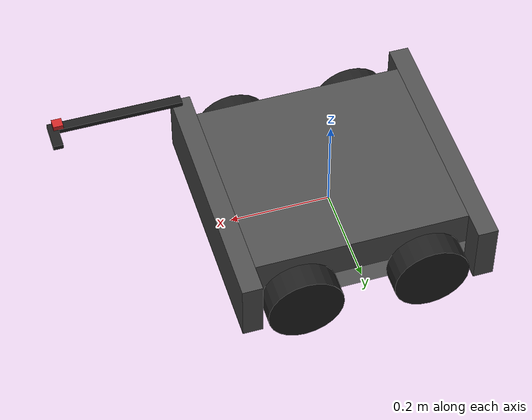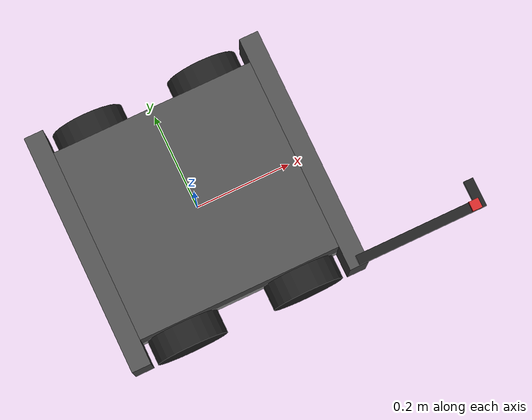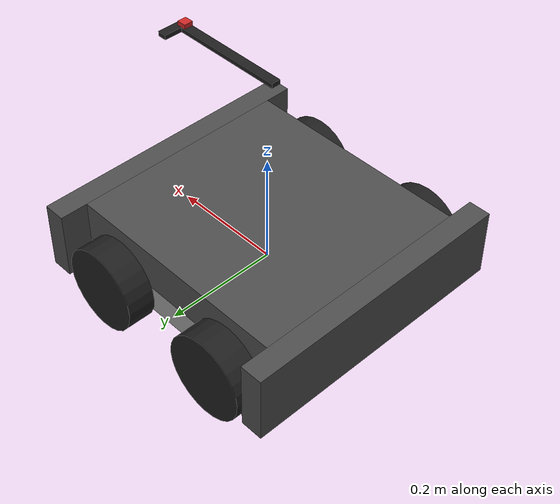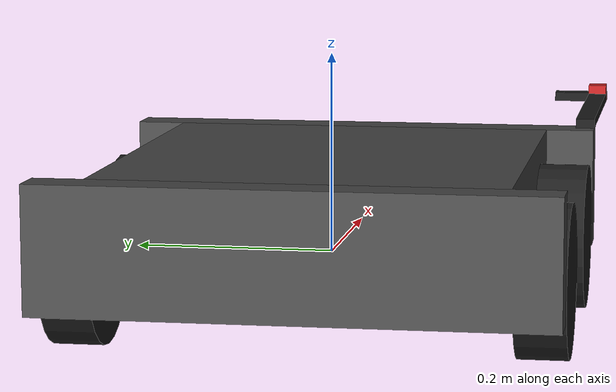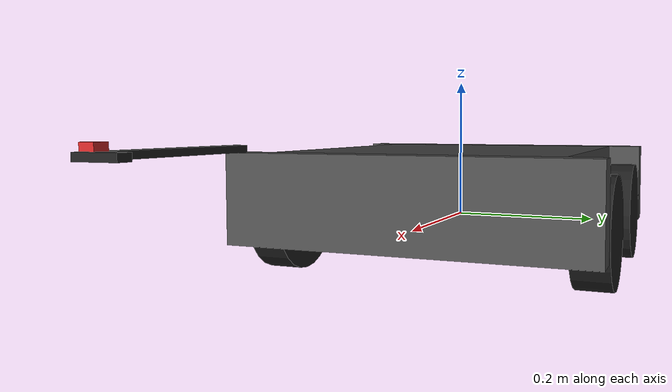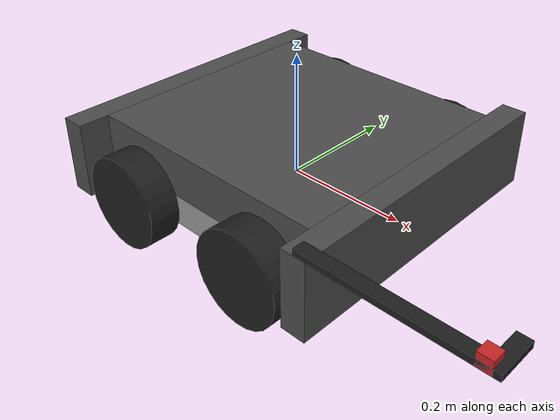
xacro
<?xml version="1.0"?>

<robot name="mobile_robot" xmlns:xacro="https://www.ros.org/wiki/xacro" >
    <xacro:include filename="$(find dor_description)/urdf/fourwheeler_base.urdf.xacro" />
    <xacro:fourwheeler_base_macro/>
    <!--mobile base 50 cm x 50 cm square-->
    <xacro:include filename="$(find dor_description)/urdf/camera.urdf.xacro"/>
    <xacro:camera_macro parent="link_tip">
      <xacro:property name="location_x" value="0.02" />
      <xacro:property name="location_y" value="0.0" />
      <xacro:property name="location_z" value="0.02" />
      <xacro:property name="location_r" value="0" />
      <xacro:property name="location_p" value="-1.57" />
      <xacro:property name="location_y" value="0" />
      <xacro:property name="camera_width" value="600" />
      <xacro:property name="camera_height" value="600" />
      <xacro:property name="camera_name" value="cam_up"/>
    </xacro:camera_macro>
</robot>

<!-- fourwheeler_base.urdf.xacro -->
<robot xmlns:xacro="https://www.ros.org/wiki/xacro" >
    <xacro:property name="PI" value="3.1415926535897931"/>
    <xacro:property name="chassis_x" value="0.42" />
    <xacro:property name="chassis_y" value="0.4" />
    <xacro:property name="chassis_z" value="0.05" />
    <xacro:property name="chassis_m" value="28" />

    <xacro:property name="wheel_r" value="0.075"/>
    <xacro:property name="wheel_l" value="0.05"/>
    <xacro:property name="wheel_m" value="0.5"/>

    <xacro:property name="wheelbase" value="0.25" /> <!--base on the wheel diameter and chassis_x-->
    <xacro:property name="track" value="0.45" /> <!--base on the wheel width and chassis_y-->
    <xacro:property name="base_x" value="0.42" />
    <xacro:property name="base_y" value="0.4" />
    <xacro:property name="base_z" value="0.075" />
    <xacro:property name="base_m" value="2" />

    <xacro:property name="bumper_x" value="0.04" />
    <xacro:property name="bumper_y" value="0.5" />
    <xacro:property name="bumper_z" value="0.125" />
    <xacro:property name="bumper_m" value="1" />

    <xacro:property name="hook_x" value="0.25" />
    <xacro:property name="hook_y" value="0.02" />
    <xacro:property name="hook_z" value="0.01" />
    <xacro:property name="hook_m" value="0.01" />

    <xacro:property name="tip_x" value="0.02" />
    <xacro:property name="tip_y" value="0.06" />
    <xacro:property name="tip_z" value="0.01" />
    <xacro:property name="tip_m" value="0.01" />

    <!-- main triwheeler link -->
    <xacro:macro name="fourwheeler_base_macro">
      <!-- Used for fixing robot to Gazebo 'base_link'-->
      <link name="world"/>
      <joint name="joint_world_chassis" type="floating">
        <parent link="world"/>
        <child link="link_chassis"/>
      </joint>

      <link name="link_chassis">
        <visual>
          <origin xyz="0 0 0" rpy="0 0 0" />
          <geometry>
            <box size="${chassis_x} ${chassis_y} ${chassis_z}"/>
          </geometry>
        </visual>
        <collision>
          <origin xyz="0 0 0" rpy="0 0 0" />
          <geometry>
            <box size="${chassis_x} ${chassis_y} ${chassis_z}"/>
          </geometry>
        </collision>
        <inertial>
          <mass value="${chassis_m}"/>
          <origin rpy="0 0 0" xyz="0 0 0"/>
          <inertia ixx="${1/12*chassis_m*(chassis_y*chassis_y+chassis_z*chassis_z)}" ixy="0" ixz="0" iyy="${1/12*chassis_m*(chassis_z*chassis_z+chassis_x*chassis_x)}" iyz="0" izz="${1/12*chassis_m*(chassis_x*chassis_x+chassis_y*chassis_y)}"/>
        </inertial>
      </link>

      <!--left rear wheel-->
      <joint name="joint_chassis_lrwheel" type="continuous">
        <origin xyz="-${wheelbase/2} ${track/2} 0" rpy="0 0 0" />
        <parent link="link_chassis"/>
        <child link="link_lrwheel"/>
        <axis xyz="0 1 0" rpy="0 0 0" />
      </joint>
      <link name="link_lrwheel">
        <visual>
          <origin rpy="${PI/2} 0 0" xyz="0 0 0"/>
          <geometry>
            <cylinder length="${wheel_l}" radius="${wheel_r}"/>
          </geometry>
        </visual>
        <collision>
          <origin rpy="${PI/2} 0 0" xyz="0 0 0" />
          <geometry>
            <cylinder length="${wheel_l}" radius="${wheel_r}"/>
          </geometry>
        </collision>
        <inertial>
          <mass value="${wheel_m}"/>
          <origin rpy="${PI/2} 0 0" xyz="0 0 0"/>
          <inertia ixx="${1/12*wheel_m*(3*wheel_r*wheel_r+wheel_l*wheel_l)}" ixy="0" ixz="0" iyy="${1/12*wheel_m*(3*wheel_r*wheel_r+wheel_l*wheel_l)}" iyz="0" izz="${1/2*wheel_m*wheel_r*wheel_r}"/>
        </inertial>
      </link>

      <!--right rear wheel-->
      <joint name="joint_chassis_rrwheel" type="continuous">
        <origin xyz="-${wheelbase/2} -${track/2} 0" rpy="0 0 0" />
        <parent link="link_chassis"/>
        <child link="link_rrwheel"/>
        <axis xyz="0 1 0" rpy="0 0 0" />
      </joint>
      <link name="link_rrwheel">
        <visual>
          <origin rpy="${PI/2} 0 0" xyz="0 0 0"/>
          <geometry>
            <cylinder length="${wheel_l}" radius="${wheel_r}"/>
          </geometry>
        </visual>
        <collision>
          <origin rpy="${PI/2} 0 0" xyz="0 0 0" />
          <geometry>
            <cylinder length="${wheel_l}" radius="${wheel_r}"/>
          </geometry>
        </collision>
        <inertial>
          <mass value="${wheel_m}"/>
          <origin rpy="${PI/2} 0 0" xyz="0 0 0"/>
          <inertia ixx="${1/12*wheel_m*(3*wheel_r*wheel_r+wheel_l*wheel_l)}" ixy="0" ixz="0" iyy="${1/12*wheel_m*(3*wheel_r*wheel_r+wheel_l*wheel_l)}" iyz="0" izz="${1/2*wheel_m*wheel_r*wheel_r}"/>
        </inertial>
      </link>

      <!--left front wheel-->
      <joint name="joint_chassis_lfwheel" type="continuous">
        <origin xyz="${wheelbase/2} ${track/2} 0" rpy="0 0 0" />
        <parent link="link_chassis"/>
        <child link="link_lfwheel"/>
        <axis xyz="0 1 0" rpy="0 0 0" />
      </joint>
      <link name="link_lfwheel">
        <visual>
          <origin rpy="${PI/2} 0 0" xyz="0 0 0"/>
          <geometry>
            <cylinder length="${wheel_l}" radius="${wheel_r}"/>
          </geometry>
        </visual>
        <collision>
          <origin rpy="${PI/2} 0 0" xyz="0 0 0" />
          <geometry>
            <cylinder length="${wheel_l}" radius="${wheel_r}"/>
          </geometry>
        </collision>
        <inertial>
          <mass value="${wheel_m}"/>
          <origin rpy="${PI/2} 0 0" xyz="0 0 0"/>
          <inertia ixx="${1/12*wheel_m*(3*wheel_r*wheel_r+wheel_l*wheel_l)}" ixy="0" ixz="0" iyy="${1/12*wheel_m*(3*wheel_r*wheel_r+wheel_l*wheel_l)}" iyz="0" izz="${1/2*wheel_m*wheel_r*wheel_r}"/>
        </inertial>
      </link>

      <!--right front wheel-->
      <joint name="joint_chassis_rfwheel" type="continuous">
        <origin xyz="${wheelbase/2} -${track/2} 0" rpy="0 0 0" />
        <parent link="link_chassis"/>
        <child link="link_rfwheel"/>
        <axis xyz="0 1 0" rpy="0 0 0" />
      </joint>
      <link name="link_rfwheel">
        <visual>
          <origin rpy="${PI/2} 0 0" xyz="0 0 0"/>
          <geometry>
            <cylinder length="${wheel_l}" radius="${wheel_r}"/>
          </geometry>
        </visual>
        <collision>
          <origin rpy="${PI/2} 0 0" xyz="0 0 0" />
          <geometry>
            <cylinder length="${wheel_l}" radius="${wheel_r}"/>
          </geometry>
        </collision>
        <inertial>
          <mass value="${wheel_m}"/>
          <origin rpy="${PI/2} 0 0" xyz="0 0 0"/>
          <inertia ixx="${1/12*wheel_m*(3*wheel_r*wheel_r+wheel_l*wheel_l)}" ixy="0" ixz="0" iyy="${1/12*wheel_m*(3*wheel_r*wheel_r+wheel_l*wheel_l)}" iyz="0" izz="${1/2*wheel_m*wheel_r*wheel_r}"/>
        </inertial>
      </link>

      <!--upper base-->
      <joint name="joint_chassis_base" type="fixed">
        <origin xyz="0 0 ${chassis_z/2}" rpy="0 0 0"/>
        <parent link="link_chassis"/>
        <child link="link_base"/>
      </joint>

      <link name="link_base">
        <visual>
          <origin xyz="0 0 ${base_z/2}" rpy="0 0 0" />
          <geometry>
            <box size="${base_x} ${base_y} ${base_z}"/>
          </geometry>
        </visual>
        <collision>
          <origin xyz="0 0 ${base_z/2}" rpy="0 0 0" />
          <geometry>
            <box size="${base_x} ${base_y} ${base_z}"/>
          </geometry>
        </collision>
        <inertial>
          <mass value="${base_m}"/>
          <origin rpy="0 0 0" xyz="0 0 0"/>
          <inertia ixx="${1/12*base_m*(base_y*base_y+base_z*base_z)}" ixy="0" ixz="0" iyy="${1/12*base_m*(base_z*base_z+base_x*base_x)}" iyz="0" izz="${1/12*base_m*(base_x*base_x+base_y*base_y)}"/>
        </inertial>
      </link>

      <!--bumper-->
      <joint name="joint_chassis_fbumper" type="fixed">
        <origin xyz="${chassis_x/2} 0 ${(chassis_z+base_z)/2-chassis_z/2}" rpy="0 0 0"/>
        <parent link="link_chassis"/>
        <child link="link_fbumper"/>
      </joint>

      <link name="link_fbumper">
        <visual>
          <origin xyz="${bumper_x/2} 0 0" rpy="0 0 0" />
          <geometry>
            <box size="${bumper_x} ${bumper_y} ${bumper_z}"/>
          </geometry>
        </visual>
        <collision>
          <origin xyz="${bumper_x/2} 0 0" rpy="0 0 0" />
          <geometry>
            <box size="${bumper_x} ${bumper_y} ${bumper_z}"/>
          </geometry>
        </collision>
        <inertial>
          <mass value="${bumper_m}"/>
          <origin rpy="0 0 0" xyz="0 0 0"/>
          <inertia ixx="${1/12*bumper_m*(bumper_y*bumper_y+bumper_z*bumper_z)}" ixy="0" ixz="0" iyy="${1/12*bumper_m*(bumper_z*bumper_z+bumper_x*bumper_x)}" iyz="0" izz="${1/12*bumper_m*(bumper_x*bumper_x+bumper_y*bumper_y)}"/>
        </inertial>
      </link>

      <joint name="joint_chassis_rbumper" type="fixed">
        <origin xyz="-${chassis_x/2} 0 ${(chassis_z+base_z)/2-chassis_z/2}" rpy="0 0 0"/>
        <parent link="link_chassis"/>
        <child link="link_rbumper"/>
      </joint>

      <link name="link_rbumper">
        <visual>
          <origin xyz="-${bumper_x/2} 0 0" rpy="0 0 0" />
          <geometry>
            <box size="${bumper_x} ${bumper_y} ${bumper_z}"/>
          </geometry>
        </visual>
        <collision>
          <origin xyz="-${bumper_x/2} 0 0" rpy="0 0 0" />
          <geometry>
            <box size="${bumper_x} ${bumper_y} ${bumper_z}"/>
          </geometry>
        </collision>
        <inertial>
          <mass value="${bumper_m}"/>
          <origin rpy="0 0 0" xyz="0 0 0"/>
          <inertia ixx="${1/12*bumper_m*(bumper_y*bumper_y+bumper_z*bumper_z)}" ixy="0" ixz="0" iyy="${1/12*bumper_m*(bumper_z*bumper_z+bumper_x*bumper_x)}" iyz="0" izz="${1/12*bumper_m*(bumper_x*bumper_x+bumper_y*bumper_y)}"/>
        </inertial>
      </link>

      <!--hook for opening door-->
      <joint name="joint_fbummer_hook" type="revolute">
        <axis xyz="1 0 0" rpy="0 0 0"/>
        <limit velocity="0" effort="1000" lower="0" upper="0"/>
        <origin xyz="${bumper_x/2} -${bumper_y/2} ${bumper_z/2}" rpy="0 0 0"/>
        <parent link="link_fbumper"/>
        <child link="link_hook"/>
      </joint>
      <link name="link_hook">
        <visual>
          <origin xyz="${hook_x/2} ${hook_y/2} ${hook_z/2}" rpy="0 0 0" />
          <geometry>
            <box size="${hook_x} ${hook_y} ${hook_z}"/>
          </geometry>
        </visual>
        <collision>
          <origin xyz="${hook_x/2} ${hook_y/2} ${hook_z/2}" rpy="0 0 0" />
          <geometry>
            <box size="${hook_x} ${hook_y} ${hook_z}"/>
          </geometry>
        </collision>
        <inertial>
          <mass value="${hook_m}"/>
          <origin rpy="0 0 0" xyz="0 0 0"/>
          <inertia ixx="${1/12*hook_m*(hook_y*hook_y+hook_z*hook_z)}" ixy="0" ixz="0" iyy="${1/12*hook_m*(hook_z*hook_z+hook_x*hook_x)}" iyz="0" izz="${1/12*hook_m*(hook_x*hook_x+hook_y*hook_y)}"/>
        </inertial>
      </link>
      <joint name="joint_hook_tip" type="fixed">
        <origin xyz="${hook_x} ${hook_y/2} 0" rpy="0 0 0"/>
        <parent link="link_hook"/>
        <child link="link_tip"/>
      </joint>
      <link name="link_tip">
        <visual>
          <origin xyz="${tip_x/2} 0.02 ${tip_z/2}" rpy="0 0 0" />
          <geometry>
            <box size="${tip_x} ${tip_y} ${tip_z}"/>
          </geometry>
        </visual>
        <collision>
          <origin xyz="${tip_x/2} 0.02 ${tip_z/2}" rpy="0 0 0" />
          <geometry>
            <box size="${tip_x} ${tip_y} ${tip_z}"/>
          </geometry>
        </collision>
        <inertial>
          <mass value="${tip_m}"/>
          <origin rpy="0 0 0" xyz="0 0 0"/>
          <inertia ixx="${1/12*tip_m*(tip_y*tip_y+tip_z*tip_z)}" ixy="0" ixz="0" iyy="${1/12*tip_m*(tip_z*tip_z+tip_x*tip_x)}" iyz="0" izz="${1/12*tip_m*(tip_x*tip_x+tip_y*tip_y)}"/>
        </inertial>
      </link>

      <!--Gazebo-->
      <!-- skid steering controller -->
      <gazebo>
        <plugin name="skid_steer_drive_controller" filename="libgazebo_ros_skid_steer_drive.so">
          <updateRate>100.0</updateRate>
          <robotNamespace>/</robotNamespace>
          <leftFrontJoint>joint_chassis_lfwheel</leftFrontJoint>
          <rightFrontJoint>joint_chassis_rfwheel</rightFrontJoint>
          <leftRearJoint>joint_chassis_lrwheel</leftRearJoint>
          <rightRearJoint>joint_chassis_rrwheel</rightRearJoint>
          <wheelSeparation>${wheelbase}</wheelSeparation>
          <wheelDiameter>2*${wheel_r}</wheelDiameter>
          <robotBaseFrame>link_chassis</robotBaseFrame>
          <odometryFrame>odom</odometryFrame>
          <torque>30</torque>
          <topicName>cmd_vel</topicName>
          <odometryTopic>odom</odometryTopic>
          <broadcastTF>true</broadcastTF>
          <commandTopic>cmd_vel</commandTopic>
          <covariance_x>0.0001</covariance_x>
          <covariance_y>0.0000</covariance_y>
          <covariance_yaw>0.01</covariance_yaw>
        </plugin>
      </gazebo>

      <gazebo reference="link_chassis">
        <material>Gazebo/Grey</material>
      </gazebo>

      <gazebo reference="link_base">
        <material>Gazebo/DarkGrey</material>
      </gazebo>

      <gazebo reference="link_fbumper">
        <material>Gazebo/DarkGrey</material>
      </gazebo>

      <gazebo reference="link_rbumper">
        <material>Gazebo/DarkGrey</material>
      </gazebo>

      <gazebo reference="link_lrwheel">
        <mu1>0.1</mu1>
        <mu2>0.1</mu2>
        <material>Gazebo/Black</material>
      </gazebo>

      <gazebo reference="link_rrwheel">
        <mu1>0.1</mu1>
        <mu2>0.1</mu2>
        <material>Gazebo/Black</material>
      </gazebo>

      <gazebo reference="link_lfwheel">
        <mu1>0.1</mu1>
        <mu2>0.1</mu2>
        <material>Gazebo/Black</material>
      </gazebo>

      <gazebo reference="link_rfwheel">
        <mu1>0.1</mu1>
        <mu2>0.1</mu2>
        <material>Gazebo/Black</material>
      </gazebo>

      <gazebo reference="link_hook">
        <material>Gazebo/Black</material>
      </gazebo>
      <gazebo reference="link_tip">
        <material>Gazebo/Black</material>
      </gazebo>

      <!--ft force sensor in joint-->
      <gazebo reference ="joint_fbummer_hook">
        <provideFeedback>true</provideFeedback>
      </gazebo>

      <gazebo>
        <plugin name="ft_sensor" filename="libgazebo_ros_ft_sensor.so">
          <updateRate>100.0</updateRate>
          <topicName>tf_sensor_topic</topicName>
          <jointName>joint_fbummer_hook</jointName>
          <noise>
            <type>guassian</type>
            <mean>0.0</mean>
            <stddev>0.003</stddev>
          </noise>
        </plugin>
      </gazebo>

    </xacro:macro>
</robot>

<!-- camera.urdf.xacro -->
<robot xmlns:xacro="https://www.ros.org/wiki/xacro" >
    <xacro:property name="M_PI" value="3.1415926535897931"/>
    <xacro:property name="location_x" value="0" />
    <xacro:property name="location_y" value="0" />
    <xacro:property name="location_z" value="0" />
    <xacro:property name="location_r" value="0" />
    <xacro:property name="location_p" value="0" />
    <xacro:property name="location_y" value="0" />
    <xacro:property name="camera_width" value="600" />
    <xacro:property name="camera_height" value="600" />

    <xacro:property name="camera_link" value="0.02" />

    <xacro:property name="camera_name" value="front_cam" />
    <xacro:macro name="camera_macro" params="parent">
    <!--movable camera-->
    <joint name="camera_joint_${camera_name}" type="fixed">
      <origin xyz="${location_x} ${location_y} ${location_z}" rpy="${location_r} ${location_p} ${location_y}"/>
      <parent link="${parent}"/>
      <child link="camera_link_${camera_name}"/>
    </joint>
    <link name="camera_link_${camera_name}">
      <collision>
        <origin xyz="0 0 ${camera_link/2}" rpy="0 0 0"/>
        <geometry>
          <box size="${camera_link} ${camera_link} ${camera_link}"/>
        </geometry>
      </collision>
      <visual>
        <origin xyz="0 0 ${camera_link/2}" rpy="0 0 0"/>
        <geometry>
          <box size="${camera_link} ${camera_link} ${camera_link}"/>
        </geometry>
      </visual>
      <inertial>
        <mass value="1e-5" />
        <origin xyz="0 0 0" rpy="0 0 0"/>
        <inertia ixx="1e-6" ixy="0" ixz="0" iyy="1e-6" iyz="0" izz="1e-6" />
      </inertial>
    </link>

    <gazebo reference="camera_link_${camera_name}">
      <material>Gazebo/Red</material>
      <sensor type="camera" name="${camera_name}">
        <update_rate>30.0</update_rate>
        <camera name="head">
          <horizontal_fov>1.3962634</horizontal_fov>
          <image>
            <width>${camera_width}</width>
            <height>${camera_height}</height>
            <format>R8G8B8</format>
          </image>
          <clip>
            <near>0.001</near>
            <far>300</far>
          </clip>
          <noise>
            <type>gaussian</type>
            <mean>0.0</mean>
            <stddev>0.007</stddev>
          </noise>
        </camera>
        <plugin name="camera_controller" filename="libgazebo_ros_camera.so">
          <alwaysOn>true</alwaysOn>
          <updateRate>0.0</updateRate>
          <cameraName>${camera_name}</cameraName>
          <imageTopicName>image_raw</imageTopicName>
          <cameraInfoTopicName>camera_info</cameraInfoTopicName>
          <frameName>${camera_name}</frameName>
          <hackBaseline>0.07</hackBaseline>
          <distortionK1>0.0</distortionK1>
          <distortionK2>0.0</distortionK2>
          <distortionK3>0.0</distortionK3>
          <distortionT1>0.0</distortionT1>
          <distortionT2>0.0</distortionT2>
        </plugin>
      </sensor>
    </gazebo>

    </xacro:macro>
</robot>
